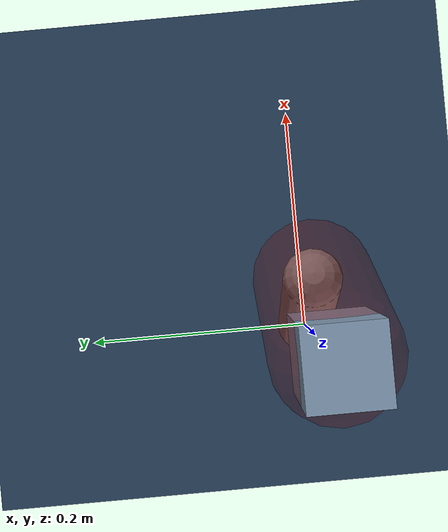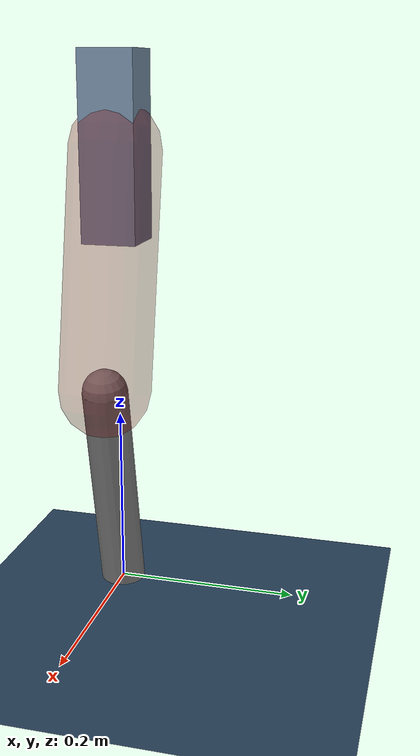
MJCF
<mujoco model="Hopper2D">
	<compiler inertiafromgeom="true" angle="radian" />
	<option timestep="0.001" integrator="implicit" cone="elliptic" solver="Newton" tolerance="1e-10" />

	<default>
		<geom contype="1" conaffinity="1" condim="3" friction="2 0.005 0.0001" solref="0.005 1" />
		<joint limited="true" damping="0.1" />
	</default>

	<asset>
		<texture name="skybox" type="skybox" builtin="gradient" rgb1=".4 .6 .8" rgb2="0 0 0" width="800" height="800" />
		<texture name="grid" type="2d" builtin="checker" rgb1=".1 .2 .3" rgb2=".2 .3 .4" width="300" height="300" mark="edge" markrgb=".2 .3 .4" />
		<material name="ground" texture="grid" texrepeat="1 1" texuniform="true" reflectance="0.1" />
		<material name="leg" rgba="0.5 0.6 0.7 1" />
	</asset>

	<worldbody>

		<geom name="floor" type="plane" size="5 5 0.25" material="ground" />

		<light directional="false" diffuse="0.8 0.8 0.8" specular="0.3 0.3 0.3" pos="0 0 2" dir="0 0 -1" />
		<light mode="targetbodycom" target="base" directional="false" diffuse="0.8 0.8 0.8" specular="0.3 0.3 0.3" pos="0 0 2" dir="0 0 -1" />

		<camera name="fixed" pos="0 -2 1" xyaxes="1 0 0 0 0 1" />
		<camera name="tracking" mode="trackcom" pos="0 -3 1" />

		<body name="root" pos="0 0 0.4973206912973356">
			<joint name="slide_x" type="slide" axis="1 0 0" range="-100 100" />
			<joint name="slide_z" type="slide" axis="0 0 1" range="0 10" />

			<body name="base" pos="0 0 0">
				<geom name="torso" type="box" size="0.03 0.03 0.1" mass="3.665" material="leg" />

				<body name="link1" pos="0 0 0" euler="0 1.377179505758683 0">
					<joint type="hinge" axis="0 -1 0" pos="0 0 0" name="hinge1" limited="true" range="-3.14 3.14" stiffness="0" damping="0.1" />
					<geom name="thigh" type="capsule" fromto="0 0 0 0.2603701044584072 0 0" size="0.05" rgba="0.5 0 0 0.3" mass="0.8833622715918586" />

					<body name="link2" pos="0.2603701044584072 0 0" euler="0 0.397899784451832 0">
						<joint type="hinge" axis="0 -1 0" pos="0 0 0" name="hinge2" limited="true" range="-3.14 3.14" stiffness="0" damping="0.1" />
						<geom name="shank" type="capsule" fromto="0 0 0 0.2469505868389284 0 0" size="0.025" mass="0.44005552815503557" />

					</body>
				</body>
			</body>
		</body>
	</worldbody>

	<actuator>
		<motor name="torque1" joint="hinge1" ctrlrange="-171.10512700149408 171.10512700149408" ctrllimited="true" gear="1" />
		<motor name="torque2" joint="hinge2" ctrlrange="-131.5405063640874 131.5405063640874" ctrllimited="true" gear="1" />
	</actuator>
</mujoco>
